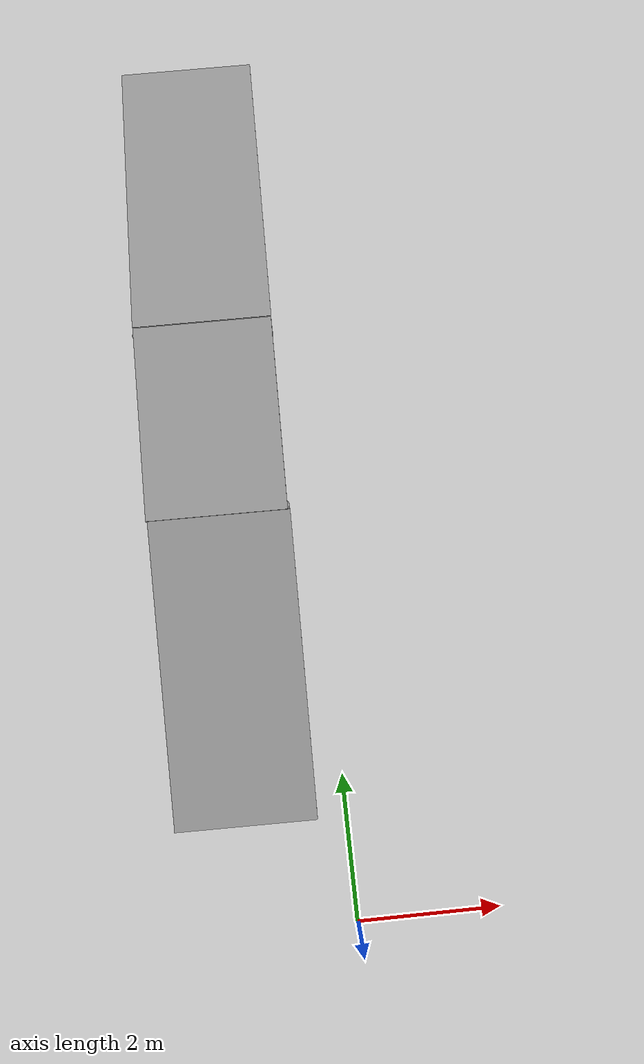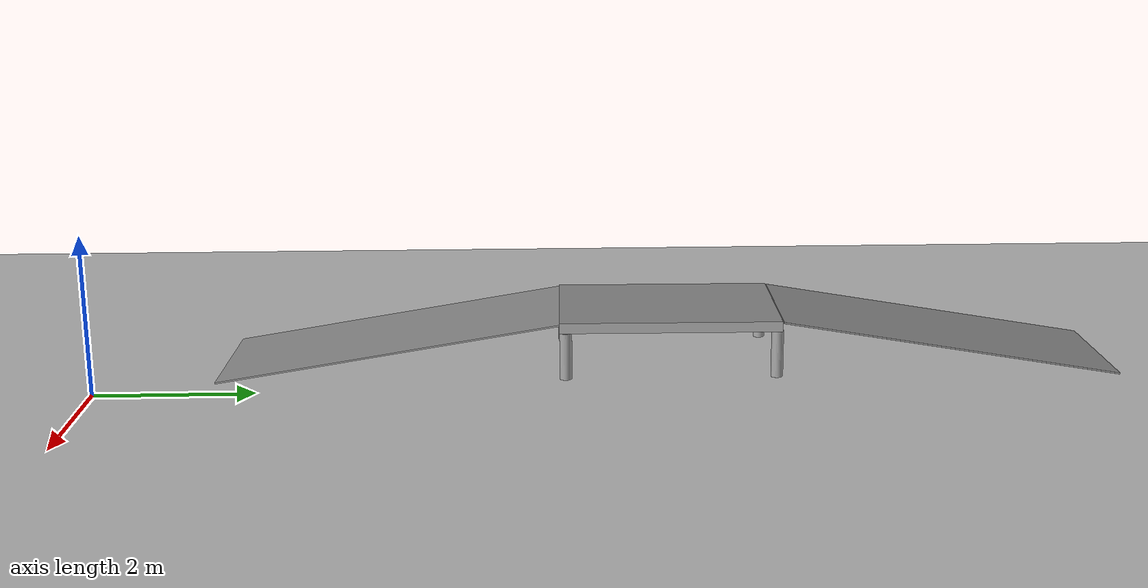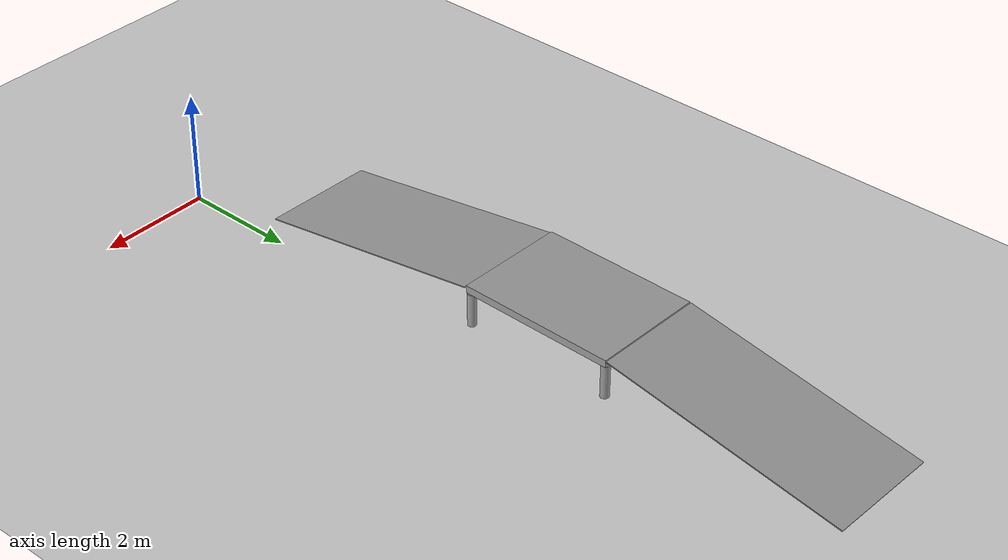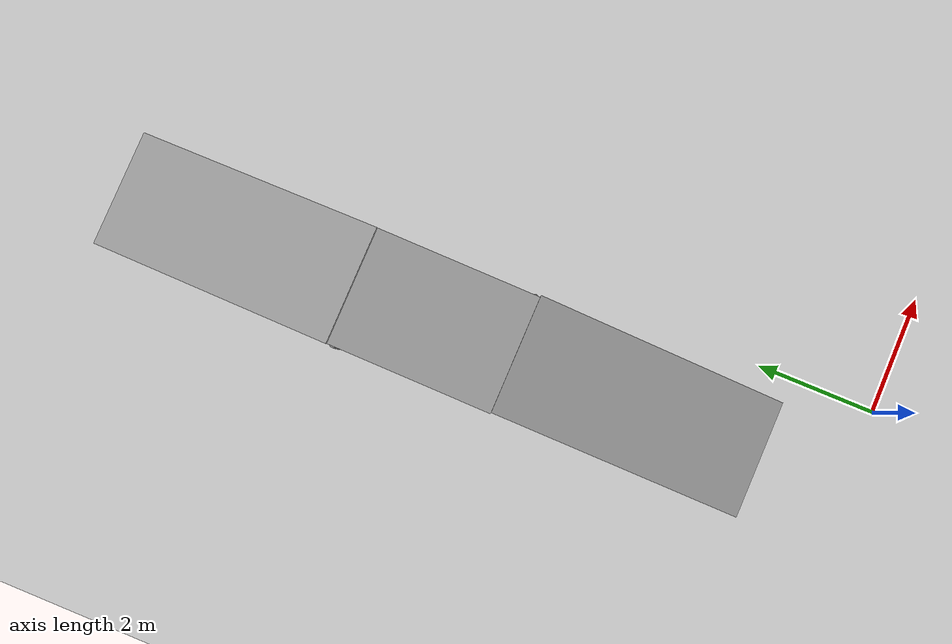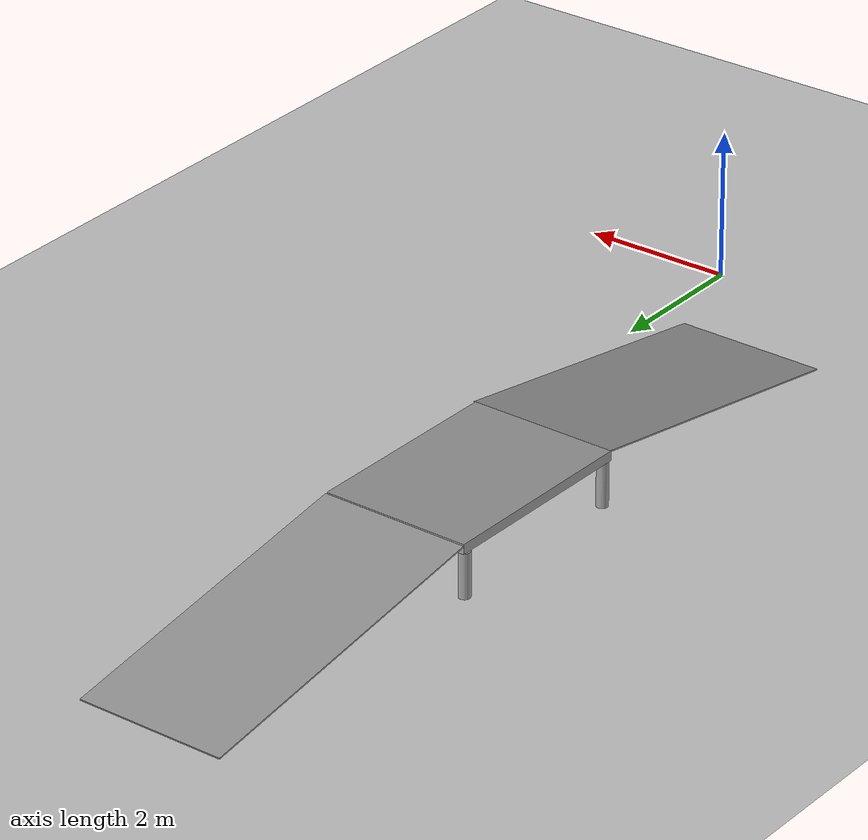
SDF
<sdf version="1.6">
 <world name="default">
  <model name="ground_plane">
   <static>1</static>
   <link name="link">
    <collision name="collision">
     <geometry><plane><normal>0 0 1</normal><size>100 100</size></plane></geometry>
     <surface><friction><ode><mu>100</mu><mu2>50</mu2></ode></friction></surface>
    </collision>
    <visual name="visual">
     <cast_shadows>0</cast_shadows>
     <geometry><plane><normal>0 0 1</normal><size>100 100</size></plane></geometry>
     <material>
      <script><uri>file://media/materials/scripts/gazebo.material</uri><name>Gazebo/Grey</name></script>
     </material>
    </visual>
   </link>
  </model>
  <model name="table_0517">
   <link name="link_0">
    <inertial>
     <mass>3.33898</mass>
     <inertia><ixx>1.13984</ixx><ixy>0</ixy><ixz>0</ixz><iyy>5.38214</iyy><iyz>0</iyz><izz>6.52179</izz></inertia>
    </inertial>
    <pose>-4.47275 -0.001455 -0.053002 0 -0.16251 0</pose>
    <visual name="visual">
     <geometry><box><size>4.39802 2.02389 0.018756</size></box></geometry>
     <material>
      <lighting>1</lighting>
      <script><uri>file://media/materials/scripts/gazebo.material</uri><name>Gazebo/Grey</name></script>
      <shader type="pixel"><normal_map>__default__</normal_map></shader>
      <emissive>0 0 0 1</emissive>
      <ambient>0.3 0.3 0.3 1</ambient>
      <diffuse>0.7 0.7 0.7 1</diffuse>
      <specular>0.01 0.01 0.01 1</specular>
     </material>
    </visual>
    <collision name="collision">
     <geometry><box><size>4.39802 2.02389 0.018756</size></box></geometry>
     <surface>
      <friction>
       <ode><mu>10</mu><mu2>10</mu2><fdir1>0 0 0</fdir1><slip1>0</slip1><slip2>0</slip2></ode>
       <torsional>
        <coefficient>1</coefficient>
        <patch_radius>0</patch_radius>
        <surface_radius>0</surface_radius>
        <use_patch_radius>1</use_patch_radius>
        <ode><slip>0</slip></ode>
       </torsional>
      </friction>
      <bounce><restitution_coefficient>0</restitution_coefficient><threshold>1e+06</threshold></bounce>
      <contact>
       <collide_without_contact>0</collide_without_contact>
       <collide_without_contact_bitmask>1</collide_without_contact_bitmask>
       <collide_bitmask>1</collide_bitmask>
       <ode>
        <soft_cfm>0</soft_cfm>
        <soft_erp>0.2</soft_erp>
        <kp>1e+13</kp>
        <kd>1</kd>
        <max_vel>0.01</max_vel>
        <min_depth>0</min_depth>
       </ode>
       <bullet>
        <split_impulse>1</split_impulse>
        <split_impulse_penetration_threshold>-0.01</split_impulse_penetration_threshold>
        <soft_cfm>0</soft_cfm>
        <soft_erp>0.2</soft_erp>
        <kp>1e+13</kp>
        <kd>1</kd>
       </bullet>
      </contact>
     </surface>
    </collision>
   </link>
   <link name="link_0_clone">
    <inertial>
     <mass>3.33898</mass>
     <inertia><ixx>1.13984</ixx><ixy>0</ixy><ixz>0</ixz><iyy>5.38214</iyy><iyz>0</iyz><izz>6.52179</izz></inertia>
    </inertial>
    <pose>2.70803 0.026547 -0.051962 0.001964 -0.162162 3.14097</pose>
    <visual name="visual">
     <geometry><box><size>4.39802 2.02389 0.018756</size></box></geometry>
     <material>
      <lighting>1</lighting>
      <script><uri>file://media/materials/scripts/gazebo.material</uri><name>Gazebo/Grey</name></script>
      <shader type="pixel"><normal_map>__default__</normal_map></shader>
      <emissive>0 0 0 1</emissive>
      <ambient>0.3 0.3 0.3 1</ambient>
      <diffuse>0.7 0.7 0.7 1</diffuse>
      <specular>0.01 0.01 0.01 1</specular>
     </material>
    </visual>
    <collision name="collision">
     <geometry><box><size>4.39802 2.02389 0.018756</size></box></geometry>
     <surface>
      <friction>
       <ode><mu>1</mu><mu2>1</mu2><fdir1>0 0 0</fdir1><slip1>0</slip1><slip2>0</slip2></ode>
       <torsional>
        <coefficient>1</coefficient>
        <patch_radius>0</patch_radius>
        <surface_radius>0</surface_radius>
        <use_patch_radius>1</use_patch_radius>
        <ode><slip>0</slip></ode>
       </torsional>
      </friction>
      <bounce><restitution_coefficient>0</restitution_coefficient><threshold>1e+06</threshold></bounce>
      <contact>
       <collide_without_contact>0</collide_without_contact>
       <collide_without_contact_bitmask>1</collide_without_contact_bitmask>
       <collide_bitmask>1</collide_bitmask>
       <ode>
        <soft_cfm>0</soft_cfm>
        <soft_erp>0.2</soft_erp>
        <kp>1e+13</kp>
        <kd>1</kd>
        <max_vel>0.01</max_vel>
        <min_depth>0</min_depth>
       </ode>
       <bullet>
        <split_impulse>1</split_impulse>
        <split_impulse_penetration_threshold>-0.01</split_impulse_penetration_threshold>
        <soft_cfm>0</soft_cfm>
        <soft_erp>0.2</soft_erp>
        <kp>1e+13</kp>
        <kd>1</kd>
       </bullet>
      </contact>
     </surface>
    </collision>
   </link>
   <link name="link_1">
    <inertial>
     <mass>0.720419</mass>
     <inertia>
      <ixx>0.0230472</ixx>
      <ixy>0</ixy>
      <ixz>0</ixz>
      <iyy>0.0230472</iyy>
      <iyz>0</iyz>
      <izz>0.00218433</izz>
     </inertia>
    </inertial>
    <pose>-2.22387 -0.929434 -0.114508 0 -0 0</pose>
    <visual name="visual">
     <geometry><cylinder><radius>0.0778722</radius><length>0.604735</length></cylinder></geometry>
     <material>
      <lighting>1</lighting>
      <script><uri>file://media/materials/scripts/gazebo.material</uri><name>Gazebo/Grey</name></script>
      <shader type="pixel"><normal_map>__default__</normal_map></shader>
      <emissive>0 0 0 1</emissive>
      <ambient>0.3 0.3 0.3 1</ambient>
      <diffuse>0.7 0.7 0.7 1</diffuse>
      <specular>0.01 0.01 0.01 1</specular>
     </material>
    </visual>
    <collision name="collision">
     <geometry><cylinder><radius>0.077872</radius><length>0.604735</length></cylinder></geometry>
     <surface>
      <friction>
       <ode><mu>1</mu><mu2>1</mu2><fdir1>0 0 0</fdir1><slip1>0</slip1><slip2>0</slip2></ode>
       <torsional>
        <coefficient>1</coefficient>
        <patch_radius>0</patch_radius>
        <surface_radius>0</surface_radius>
        <use_patch_radius>1</use_patch_radius>
        <ode><slip>0</slip></ode>
       </torsional>
      </friction>
      <bounce><restitution_coefficient>0</restitution_coefficient><threshold>1e+06</threshold></bounce>
      <contact>
       <collide_without_contact>0</collide_without_contact>
       <collide_without_contact_bitmask>1</collide_without_contact_bitmask>
       <collide_bitmask>1</collide_bitmask>
       <ode>
        <soft_cfm>0</soft_cfm>
        <soft_erp>0.2</soft_erp>
        <kp>1e+13</kp>
        <kd>1</kd>
        <max_vel>0.01</max_vel>
        <min_depth>0</min_depth>
       </ode>
       <bullet>
        <split_impulse>1</split_impulse>
        <split_impulse_penetration_threshold>-0.01</split_impulse_penetration_threshold>
        <soft_cfm>0</soft_cfm>
        <soft_erp>0.2</soft_erp>
        <kp>1e+13</kp>
        <kd>1</kd>
       </bullet>
      </contact>
     </surface>
    </collision>
   </link>
   <link name="link_1_clone">
    <inertial>
     <mass>0.720419</mass>
     <inertia>
      <ixx>0.0230472</ixx>
      <ixy>0</ixy>
      <ixz>0</ixz>
      <iyy>0.0230472</iyy>
      <iyz>0</iyz>
      <izz>0.00218433</izz>
     </inertia>
    </inertial>
    <pose>0.467301 -0.902727 -0.113572 0.000336 6.3e-05 -1.5604</pose>
    <visual name="visual">
     <geometry><cylinder><radius>0.0778722</radius><length>0.604735</length></cylinder></geometry>
     <material>
      <lighting>1</lighting>
      <script><uri>file://media/materials/scripts/gazebo.material</uri><name>Gazebo/Grey</name></script>
      <shader type="pixel"><normal_map>__default__</normal_map></shader>
      <emissive>0 0 0 1</emissive>
      <ambient>0.3 0.3 0.3 1</ambient>
      <diffuse>0.7 0.7 0.7 1</diffuse>
      <specular>0.01 0.01 0.01 1</specular>
     </material>
    </visual>
    <collision name="collision">
     <geometry><cylinder><radius>0.077872</radius><length>0.604735</length></cylinder></geometry>
     <surface>
      <friction>
       <ode><mu>1</mu><mu2>1</mu2><fdir1>0 0 0</fdir1><slip1>0</slip1><slip2>0</slip2></ode>
       <torsional>
        <coefficient>1</coefficient>
        <patch_radius>0</patch_radius>
        <surface_radius>0</surface_radius>
        <use_patch_radius>1</use_patch_radius>
        <ode><slip>0</slip></ode>
       </torsional>
      </friction>
      <bounce><restitution_coefficient>0</restitution_coefficient><threshold>1e+06</threshold></bounce>
      <contact>
       <collide_without_contact>0</collide_without_contact>
       <collide_without_contact_bitmask>1</collide_without_contact_bitmask>
       <collide_bitmask>1</collide_bitmask>
       <ode>
        <soft_cfm>0</soft_cfm>
        <soft_erp>0.2</soft_erp>
        <kp>1e+13</kp>
        <kd>1</kd>
        <max_vel>0.01</max_vel>
        <min_depth>0</min_depth>
       </ode>
       <bullet>
        <split_impulse>1</split_impulse>
        <split_impulse_penetration_threshold>-0.01</split_impulse_penetration_threshold>
        <soft_cfm>0</soft_cfm>
        <soft_erp>0.2</soft_erp>
        <kp>1e+13</kp>
        <kd>1</kd>
       </bullet>
      </contact>
     </surface>
    </collision>
   </link>
   <link name="link_1_clone_0">
    <inertial>
     <mass>0.720419</mass>
     <inertia>
      <ixx>0.0230472</ixx>
      <ixy>0</ixy>
      <ixz>0</ixz>
      <iyy>0.0230472</iyy>
      <iyz>0</iyz>
      <izz>0.00218433</izz>
     </inertia>
    </inertial>
    <pose>0.447697 0.982459 -0.113454 0.000336 6.3e-05 -1.5604</pose>
    <visual name="visual">
     <geometry><cylinder><radius>0.0778722</radius><length>0.604735</length></cylinder></geometry>
     <material>
      <lighting>1</lighting>
      <script><uri>file://media/materials/scripts/gazebo.material</uri><name>Gazebo/Grey</name></script>
      <shader type="pixel"><normal_map>__default__</normal_map></shader>
      <emissive>0 0 0 1</emissive>
      <ambient>0.3 0.3 0.3 1</ambient>
      <diffuse>0.7 0.7 0.7 1</diffuse>
      <specular>0.01 0.01 0.01 1</specular>
     </material>
    </visual>
    <collision name="collision">
     <geometry><cylinder><radius>0.077872</radius><length>0.604735</length></cylinder></geometry>
     <surface>
      <friction>
       <ode><mu>1</mu><mu2>1</mu2><fdir1>0 0 0</fdir1><slip1>0</slip1><slip2>0</slip2></ode>
       <torsional>
        <coefficient>1</coefficient>
        <patch_radius>0</patch_radius>
        <surface_radius>0</surface_radius>
        <use_patch_radius>1</use_patch_radius>
        <ode><slip>0</slip></ode>
       </torsional>
      </friction>
      <bounce><restitution_coefficient>0</restitution_coefficient><threshold>1e+06</threshold></bounce>
      <contact>
       <collide_without_contact>0</collide_without_contact>
       <collide_without_contact_bitmask>1</collide_without_contact_bitmask>
       <collide_bitmask>1</collide_bitmask>
       <ode>
        <soft_cfm>0</soft_cfm>
        <soft_erp>0.2</soft_erp>
        <kp>1e+13</kp>
        <kd>1</kd>
        <max_vel>0.01</max_vel>
        <min_depth>0</min_depth>
       </ode>
       <bullet>
        <split_impulse>1</split_impulse>
        <split_impulse_penetration_threshold>-0.01</split_impulse_penetration_threshold>
        <soft_cfm>0</soft_cfm>
        <soft_erp>0.2</soft_erp>
        <kp>1e+13</kp>
        <kd>1</kd>
       </bullet>
      </contact>
     </surface>
    </collision>
   </link>
   <link name="link_1_clone_1">
    <inertial>
     <mass>0.720419</mass>
     <inertia>
      <ixx>0.0230472</ixx>
      <ixy>0</ixy>
      <ixz>0</ixz>
      <iyy>0.0230472</iyy>
      <iyz>0</iyz>
      <izz>0.00218433</izz>
     </inertia>
    </inertial>
    <pose>-2.24437 0.954462 -0.114359 0.000336 6.3e-05 -1.5604</pose>
    <visual name="visual">
     <geometry><cylinder><radius>0.0778722</radius><length>0.604735</length></cylinder></geometry>
     <material>
      <lighting>1</lighting>
      <script><uri>file://media/materials/scripts/gazebo.material</uri><name>Gazebo/Grey</name></script>
      <shader type="pixel"><normal_map>__default__</normal_map></shader>
      <emissive>0 0 0 1</emissive>
      <ambient>0.3 0.3 0.3 1</ambient>
      <diffuse>0.7 0.7 0.7 1</diffuse>
      <specular>0.01 0.01 0.01 1</specular>
     </material>
    </visual>
    <collision name="collision">
     <geometry><cylinder><radius>0.077872</radius><length>0.604735</length></cylinder></geometry>
     <surface>
      <friction>
       <ode><mu>1</mu><mu2>1</mu2><fdir1>0 0 0</fdir1><slip1>0</slip1><slip2>0</slip2></ode>
       <torsional>
        <coefficient>1</coefficient>
        <patch_radius>0</patch_radius>
        <surface_radius>0</surface_radius>
        <use_patch_radius>1</use_patch_radius>
        <ode><slip>0</slip></ode>
       </torsional>
      </friction>
      <bounce><restitution_coefficient>0</restitution_coefficient><threshold>1e+06</threshold></bounce>
      <contact>
       <collide_without_contact>0</collide_without_contact>
       <collide_without_contact_bitmask>1</collide_without_contact_bitmask>
       <collide_bitmask>1</collide_bitmask>
       <ode>
        <soft_cfm>0</soft_cfm>
        <soft_erp>0.2</soft_erp>
        <kp>1e+13</kp>
        <kd>1</kd>
        <max_vel>0.01</max_vel>
        <min_depth>0</min_depth>
       </ode>
       <bullet>
        <split_impulse>1</split_impulse>
        <split_impulse_penetration_threshold>-0.01</split_impulse_penetration_threshold>
        <soft_cfm>0</soft_cfm>
        <soft_erp>0.2</soft_erp>
        <kp>1e+13</kp>
        <kd>1</kd>
       </bullet>
      </contact>
     </surface>
    </collision>
   </link>
   <link name="link_2">
    <inertial>
     <mass>15.0823</mass>
     <inertia><ixx>5.10868</ixx><ixy>0</ixy><ixz>0</ixz><iyy>10.0677</iyy><iyz>0</iyz><izz>15.1322</izz></inertia>
    </inertial>
    <pose>-0.88867 0.025841 0.25524 0 -0 0</pose>
    <visual name="visual">
     <geometry><box><size>2.82712 2.01173 0.132594</size></box></geometry>
     <material>
      <lighting>1</lighting>
      <script><uri>file://media/materials/scripts/gazebo.material</uri><name>Gazebo/Grey</name></script>
      <shader type="pixel"><normal_map>__default__</normal_map></shader>
      <emissive>0 0 0 1</emissive>
     </material>
    </visual>
    <collision name="collision">
     <geometry><box><size>2.82712 2.01173 0.132594</size></box></geometry>
     <surface>
      <friction>
       <ode><mu>10</mu><mu2>10</mu2><fdir1>0 0 0</fdir1><slip1>0</slip1><slip2>0</slip2></ode>
       <torsional>
        <coefficient>1</coefficient>
        <patch_radius>0</patch_radius>
        <surface_radius>0</surface_radius>
        <use_patch_radius>1</use_patch_radius>
        <ode><slip>0</slip></ode>
       </torsional>
      </friction>
      <bounce><restitution_coefficient>0</restitution_coefficient><threshold>1e+06</threshold></bounce>
      <contact>
       <collide_without_contact>0</collide_without_contact>
       <collide_without_contact_bitmask>1</collide_without_contact_bitmask>
       <collide_bitmask>1</collide_bitmask>
       <ode>
        <soft_cfm>0</soft_cfm>
        <soft_erp>0.2</soft_erp>
        <kp>1e+13</kp>
        <kd>1</kd>
        <max_vel>0.01</max_vel>
        <min_depth>0</min_depth>
       </ode>
       <bullet>
        <split_impulse>1</split_impulse>
        <split_impulse_penetration_threshold>-0.01</split_impulse_penetration_threshold>
        <soft_cfm>0</soft_cfm>
        <soft_erp>0.2</soft_erp>
        <kp>1e+13</kp>
        <kd>1</kd>
       </bullet>
      </contact>
     </surface>
    </collision>
   </link>
   <joint name="link_1_JOINT_0" type="fixed">
    <parent>link_1</parent>
    <child>link_2</child>
    <physics>
     <ode><limit><cfm>0</cfm><erp>0.2</erp></limit><suspension><cfm>0</cfm><erp>0.2</erp></suspension></ode>
    </physics>
   </joint>
   <joint name="link_2_JOINT_1" type="fixed">
    <parent>link_2</parent>
    <child>link_1_clone</child>
    <physics>
     <ode><limit><cfm>0</cfm><erp>0.2</erp></limit><suspension><cfm>0</cfm><erp>0.2</erp></suspension></ode>
    </physics>
   </joint>
   <joint name="link_2_JOINT_2" type="fixed">
    <parent>link_2</parent>
    <child>link_1_clone_1</child>
    <physics>
     <ode><limit><cfm>0</cfm><erp>0.2</erp></limit><suspension><cfm>0</cfm><erp>0.2</erp></suspension></ode>
    </physics>
   </joint>
   <joint name="link_2_JOINT_3" type="fixed">
    <parent>link_2</parent>
    <child>link_1_clone_0</child>
    <physics>
     <ode><limit><cfm>0</cfm><erp>0.2</erp></limit><suspension><cfm>0</cfm><erp>0.2</erp></suspension></ode>
    </physics>
   </joint>
   <joint name="link_2_JOINT_5" type="fixed">
    <parent>link_2</parent>
    <child>link_0</child>
    <physics>
     <ode><limit><cfm>0</cfm><erp>0.2</erp></limit><suspension><cfm>0</cfm><erp>0.2</erp></suspension></ode>
    </physics>
   </joint>
   <joint name="link_2_JOINT_6" type="fixed">
    <parent>link_2</parent>
    <child>link_0_clone</child>
    <physics>
     <ode><limit><cfm>0</cfm><erp>0.2</erp></limit><suspension><cfm>0</cfm><erp>0.2</erp></suspension></ode>
    </physics>
   </joint>
   <static>0</static>
   <pose>-1.33579 8.07497 0.418129 0 -1.2e-05 1.5569</pose>
  </model>
 </world>
</sdf>
